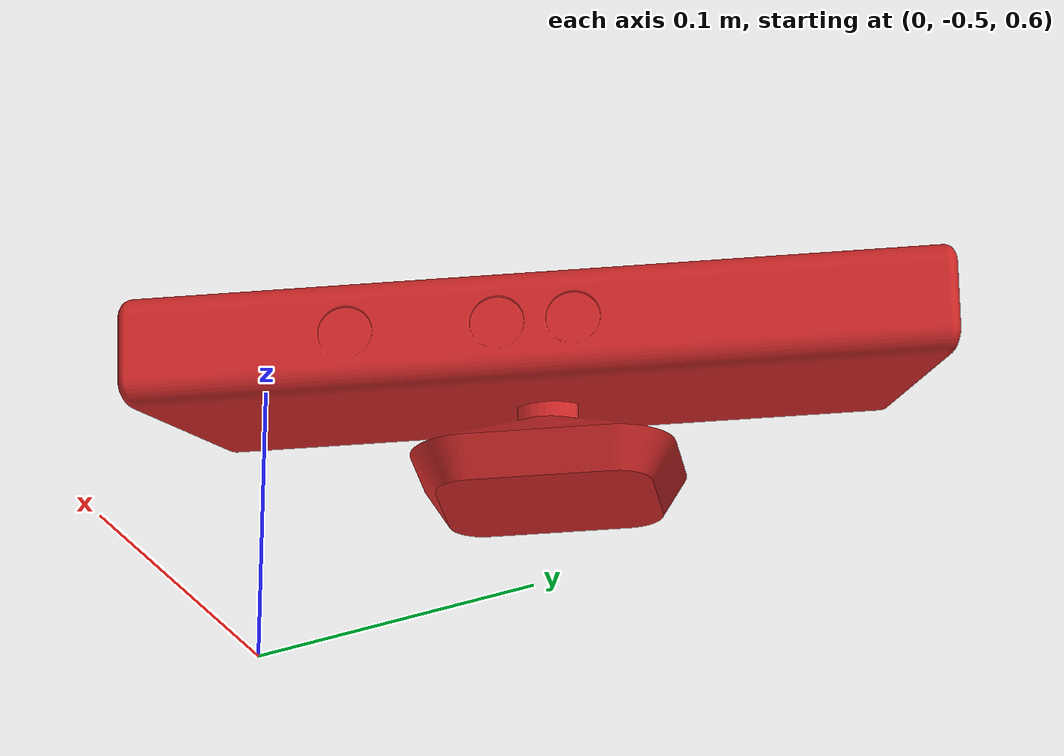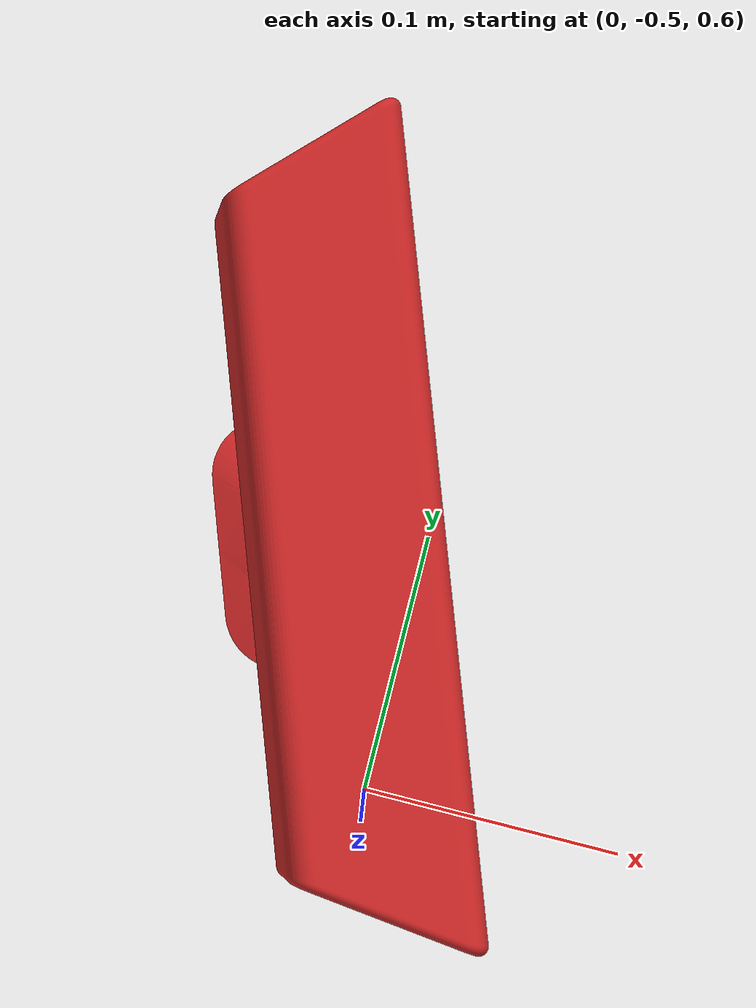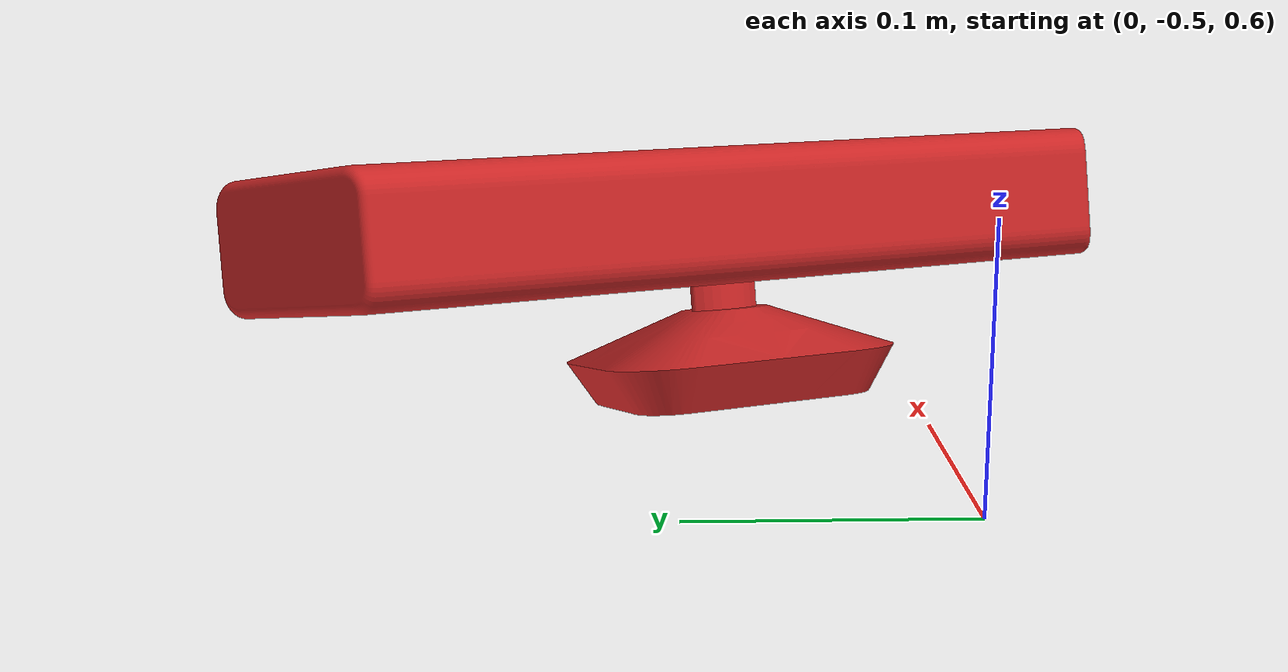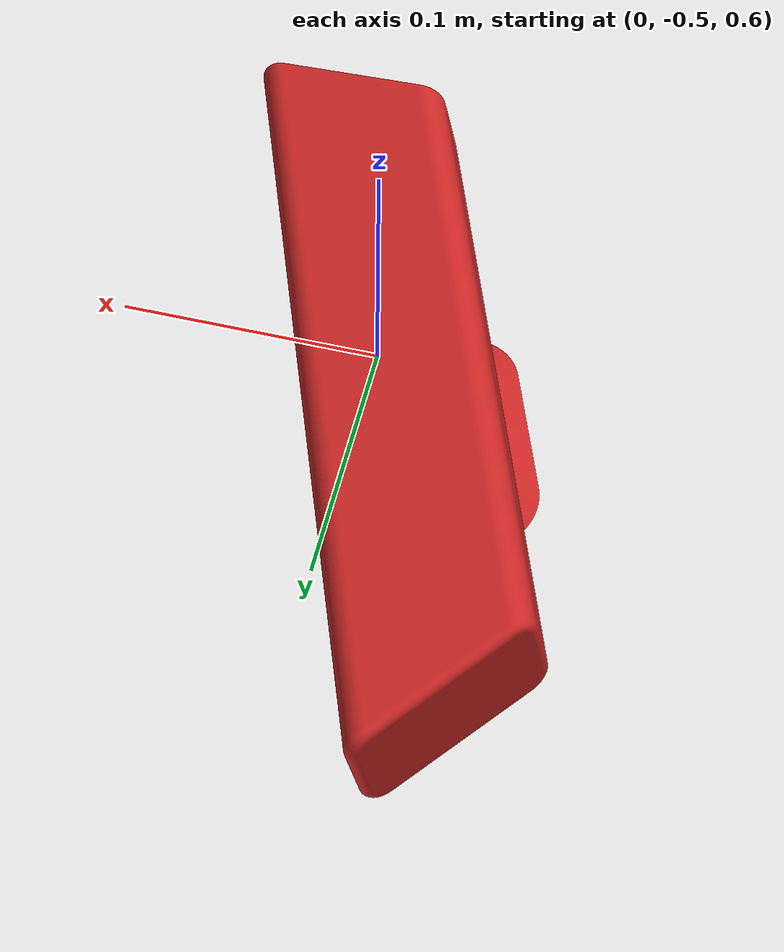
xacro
<?xml version="1.0"?>
<robot name = "kinect" xmlns:xacro="http://www.ros.org/wiki/xacro">

  <xacro:include filename="$(find kinect)/urdf/kinect.gazebo.xacro" />

  <link name="world"/>

  <!--Camera-->
    <joint name="base_camera_joint" type="fixed">
      <axis xyz="0 0 0" />
      <origin xyz="-0.0 -0.4 0.7" rpy="0 0.2 0.35"/>

      <parent link="world"/>
      <child link="base_camera_link"/>
    </joint>

    <link name="base_camera_link">
      <collision>
        <origin xyz="0 0 0" rpy="0 0 0"/>
        <geometry>
      <box size="0.1 0.1 0.1"/>
        </geometry>
      </collision>

      <visual>
        <origin xyz="0 0 0" rpy="0 0 0"/>
        <geometry>
          <mesh filename="package://kinect/meshes/kinect.dae"/>
        </geometry>
        <material name="red"/>
      </visual>

      <inertial>
        <mass value="0.1" />
        <origin xyz="0 0 0" rpy="0 0 0"/>
        <inertia ixx="1e-6" ixy="0" ixz="0" iyy="1e-6" iyz="0" izz="1e-6" />
      </inertial>
    </link>

    <joint name="base_camera_depth_joint" type="fixed">
      <axis xyz="0 0 1" />
      <origin xyz="0 0 0" rpy="${-3.1415/2} 0 ${-3.1415/2}"/>
      <parent link="base_camera_link"/>
      <child link="base_camera_depth_link"/>
    </joint>

    <link name="base_camera_depth_link"/>
</robot>
